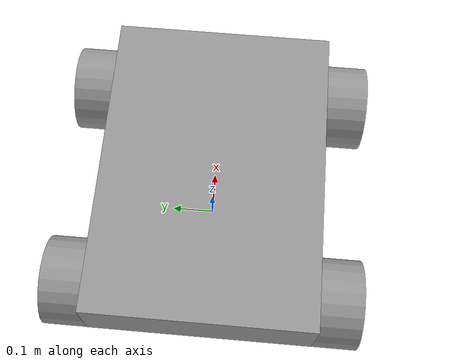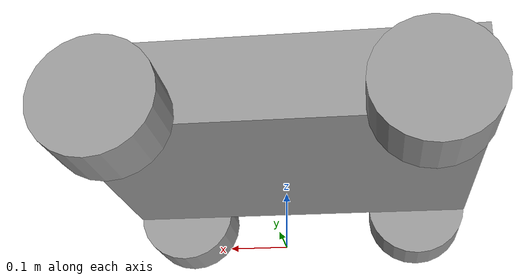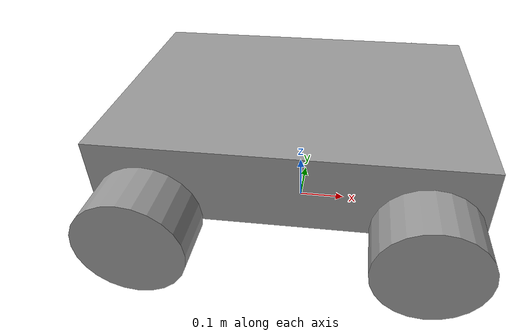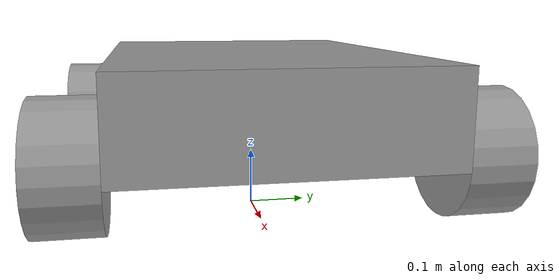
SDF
<?xml version='1.0'?>
<sdf version='1.6'>
  <model name='4wheelrobot1'>
    <link name='Chassis'>
      <pose frame=''>0 0 0.0128 0 -0 0</pose>
      <inertial>
        <mass>1</mass>
        <inertia>
          <ixx>0.166667</ixx>
          <ixy>0</ixy>
          <ixz>0</ixz>
          <iyy>0.166667</iyy>
          <iyz>0</iyz>
          <izz>0.166667</izz>
        </inertia>
        <pose frame=''>0 0 0.2 0 -0 0</pose>
      </inertial>
      <gravity>1</gravity>
      <self_collide>0</self_collide>
      <kinematic>0</kinematic>
      <visual name='Chassis_visual'>
        <pose frame=''>0 0 0.2 0 -0 0</pose>
        <geometry>
          <box>
            <size>0.7 0.5 0.15</size>
          </box>
        </geometry>
        <material>
          <lighting>1</lighting>
          <script>
            <uri>file://media/materials/scripts/gazebo.material</uri>
            <name>Gazebo/Grey</name>
          </script>
          <shader type='pixel'>
            <normal_map>__default__</normal_map>
          </shader>
          <ambient>0.3 0.3 0.3 1</ambient>
          <diffuse>0.7 0.7 0.7 1</diffuse>
          <specular>0.01 0.01 0.01 1</specular>
          <emissive>0 0 0 1</emissive>
        </material>
        <transparency>0</transparency>
        <cast_shadows>1</cast_shadows>
      </visual>
      <collision name='Chassis_collision'>
        <laser_retro>0</laser_retro>
        <max_contacts>10</max_contacts>
        <pose frame=''>0 0 0.2 0 -0 0</pose>
        <geometry>
          <box>
            <size>0.7 0.5 0.15</size>
          </box>
        </geometry>
        <surface>
          <friction>
            <ode>
              <mu>1</mu>
              <mu2>1</mu2>
              <fdir1>0 0 0</fdir1>
              <slip1>0</slip1>
              <slip2>0</slip2>
            </ode>
            <torsional>
              <coefficient>1</coefficient>
              <patch_radius>0</patch_radius>
              <surface_radius>0</surface_radius>
              <use_patch_radius>1</use_patch_radius>
              <ode>
                <slip>0</slip>
              </ode>
            </torsional>
          </friction>
          <bounce>
            <restitution_coefficient>0</restitution_coefficient>
            <threshold>1e+06</threshold>
          </bounce>
          <contact>
            <collide_without_contact>0</collide_without_contact>
            <collide_without_contact_bitmask>1</collide_without_contact_bitmask>
            <collide_bitmask>1</collide_bitmask>
            <ode>
              <soft_cfm>0</soft_cfm>
              <soft_erp>0.2</soft_erp>
              <kp>1e+13</kp>
              <kd>1</kd>
              <max_vel>0.01</max_vel>
              <min_depth>0</min_depth>
            </ode>
            <bullet>
              <split_impulse>1</split_impulse>
              <split_impulse_penetration_threshold>-0.01</split_impulse_penetration_threshold>
              <soft_cfm>0</soft_cfm>
              <soft_erp>0.2</soft_erp>
              <kp>1e+13</kp>
              <kd>1</kd>
            </bullet>
          </contact>
        </surface>
      </collision>
    </link>
    <link name='wheel_1'>
      <pose frame=''>-0.25 0.30001 -0.0032 0 -0 0</pose>
      <inertial>
        <mass>1</mass>
        <inertia>
          <ixx>0.145833</ixx>
          <ixy>0</ixy>
          <ixz>0</ixz>
          <iyy>0.145833</iyy>
          <iyz>0</iyz>
          <izz>0.125</izz>
        </inertia>
        <pose frame=''>0 0 0 0 -0 0</pose>
      </inertial>
      <self_collide>0</self_collide>
      <kinematic>0</kinematic>
      <gravity>1</gravity>
      <visual name='wheel_1_visual'>
        <pose frame=''>0 0 0.15 1.5707 -0 0</pose>
        <geometry>
          <cylinder>
            <radius>0.1</radius>
            <length>0.1</length>
          </cylinder>
        </geometry>
        <material>
          <lighting>1</lighting>
          <script>
            <uri>file://media/materials/scripts/gazebo.material</uri>
            <name>Gazebo/Grey</name>
          </script>
          <shader type='pixel'>
            <normal_map>__default__</normal_map>
          </shader>
          <ambient>0.3 0.3 0.3 1</ambient>
          <diffuse>0.7 0.7 0.7 1</diffuse>
          <specular>0.01 0.01 0.01 1</specular>
          <emissive>0 0 0 1</emissive>
        </material>
        <transparency>0</transparency>
        <cast_shadows>1</cast_shadows>
      </visual>
      <collision name='wheel_1_collision'>
        <laser_retro>0</laser_retro>
        <max_contacts>10</max_contacts>
        <pose frame=''>0 0 0.15 1.5707 -0 0</pose>
        <geometry>
          <cylinder>
            <radius>0.1</radius>
            <length>0.1</length>
          </cylinder>
        </geometry>
        <surface>
          <friction>
            <ode>
              <mu>1</mu>
              <mu2>1</mu2>
              <fdir1>0 0 0</fdir1>
              <slip1>0</slip1>
              <slip2>0</slip2>
            </ode>
            <torsional>
              <coefficient>1</coefficient>
              <patch_radius>0</patch_radius>
              <surface_radius>0</surface_radius>
              <use_patch_radius>1</use_patch_radius>
              <ode>
                <slip>0</slip>
              </ode>
            </torsional>
          </friction>
          <bounce>
            <restitution_coefficient>0</restitution_coefficient>
            <threshold>1e+06</threshold>
          </bounce>
          <contact>
            <collide_without_contact>0</collide_without_contact>
            <collide_without_contact_bitmask>1</collide_without_contact_bitmask>
            <collide_bitmask>1</collide_bitmask>
            <ode>
              <soft_cfm>0</soft_cfm>
              <soft_erp>0.2</soft_erp>
              <kp>1e+13</kp>
              <kd>1</kd>
              <max_vel>0.01</max_vel>
              <min_depth>0</min_depth>
            </ode>
            <bullet>
              <split_impulse>1</split_impulse>
              <split_impulse_penetration_threshold>-0.01</split_impulse_penetration_threshold>
              <soft_cfm>0</soft_cfm>
              <soft_erp>0.2</soft_erp>
              <kp>1e+13</kp>
              <kd>1</kd>
            </bullet>
          </contact>
        </surface>
      </collision>
    </link>
    <link name='wheel_2'>
      <pose frame=''>0.25 -0.30001 -0.0032 0 -0 0</pose>
      <inertial>
        <mass>1</mass>
        <inertia>
          <ixx>0.145833</ixx>
          <ixy>0</ixy>
          <ixz>0</ixz>
          <iyy>0.145833</iyy>
          <iyz>0</iyz>
          <izz>0.125</izz>
        </inertia>
        <pose frame=''>0 0 0 0 -0 0</pose>
      </inertial>
      <self_collide>0</self_collide>
      <kinematic>0</kinematic>
      <visual name='wheel_2_visual'>
        <pose frame=''>0 0 0.15 1.5707 -0 0</pose>
        <geometry>
          <cylinder>
            <radius>0.1</radius>
            <length>0.1</length>
          </cylinder>
        </geometry>
        <material>
          <lighting>1</lighting>
          <script>
            <uri>file://media/materials/scripts/gazebo.material</uri>
            <name>Gazebo/Grey</name>
          </script>
          <shader type='pixel'>
            <normal_map>__default__</normal_map>
          </shader>
          <ambient>0.3 0.3 0.3 1</ambient>
          <diffuse>0.7 0.7 0.7 1</diffuse>
          <specular>0.01 0.01 0.01 1</specular>
          <emissive>0 0 0 1</emissive>
        </material>
        <transparency>0</transparency>
        <cast_shadows>1</cast_shadows>
      </visual>
      <collision name='wheel_2_collision'>
        <laser_retro>0</laser_retro>
        <max_contacts>10</max_contacts>
        <pose frame=''>0 0 0.15 1.5707 -0 0</pose>
        <geometry>
          <cylinder>
            <radius>0.1</radius>
            <length>0.1</length>
          </cylinder>
        </geometry>
        <surface>
          <friction>
            <ode>
              <mu>1</mu>
              <mu2>1</mu2>
              <fdir1>0 0 0</fdir1>
              <slip1>0</slip1>
              <slip2>0</slip2>
            </ode>
            <torsional>
              <coefficient>1</coefficient>
              <patch_radius>0</patch_radius>
              <surface_radius>0</surface_radius>
              <use_patch_radius>1</use_patch_radius>
              <ode>
                <slip>0</slip>
              </ode>
            </torsional>
          </friction>
          <bounce>
            <restitution_coefficient>0</restitution_coefficient>
            <threshold>1e+06</threshold>
          </bounce>
          <contact>
            <collide_without_contact>0</collide_without_contact>
            <collide_without_contact_bitmask>1</collide_without_contact_bitmask>
            <collide_bitmask>1</collide_bitmask>
            <ode>
              <soft_cfm>0</soft_cfm>
              <soft_erp>0.2</soft_erp>
              <kp>1e+13</kp>
              <kd>1</kd>
              <max_vel>0.01</max_vel>
              <min_depth>0</min_depth>
            </ode>
            <bullet>
              <split_impulse>1</split_impulse>
              <split_impulse_penetration_threshold>-0.01</split_impulse_penetration_threshold>
              <soft_cfm>0</soft_cfm>
              <soft_erp>0.2</soft_erp>
              <kp>1e+13</kp>
              <kd>1</kd>
            </bullet>
          </contact>
        </surface>
      </collision>
    </link>
    <link name='wheel_3'>
      <pose frame=''>-0.25 -0.30001 -0.0032 0 -0 0</pose>
      <inertial>
        <mass>1</mass>
        <inertia>
          <ixx>0.145833</ixx>
          <ixy>0</ixy>
          <ixz>0</ixz>
          <iyy>0.145833</iyy>
          <iyz>0</iyz>
          <izz>0.125</izz>
        </inertia>
        <pose frame=''>0 0 0 0 -0 0</pose>
      </inertial>
      <self_collide>0</self_collide>
      <kinematic>0</kinematic>
      <visual name='visual'>
        <pose frame=''>0 0 0.15 1.5707 -0 0</pose>
        <geometry>
          <cylinder>
            <radius>0.1</radius>
            <length>0.1</length>
          </cylinder>
        </geometry>
        <material>
          <lighting>1</lighting>
          <script>
            <uri>file://media/materials/scripts/gazebo.material</uri>
            <name>Gazebo/Grey</name>
          </script>
          <shader type='pixel'>
            <normal_map>__default__</normal_map>
          </shader>
          <ambient>0.3 0.3 0.3 1</ambient>
          <diffuse>0.7 0.7 0.7 1</diffuse>
          <specular>0.01 0.01 0.01 1</specular>
          <emissive>0 0 0 1</emissive>
        </material>
        <transparency>0</transparency>
        <cast_shadows>1</cast_shadows>
      </visual>
      <collision name='collision'>
        <laser_retro>0</laser_retro>
        <max_contacts>10</max_contacts>
        <pose frame=''>0 0 0.15 1.5707 -0 0</pose>
        <geometry>
          <cylinder>
            <radius>0.1</radius>
            <length>0.1</length>
          </cylinder>
        </geometry>
        <surface>
          <friction>
            <ode>
              <mu>1</mu>
              <mu2>1</mu2>
              <fdir1>0 0 0</fdir1>
              <slip1>0</slip1>
              <slip2>0</slip2>
            </ode>
            <torsional>
              <coefficient>1</coefficient>
              <patch_radius>0</patch_radius>
              <surface_radius>0</surface_radius>
              <use_patch_radius>1</use_patch_radius>
              <ode>
                <slip>0</slip>
              </ode>
            </torsional>
          </friction>
          <bounce>
            <restitution_coefficient>0</restitution_coefficient>
            <threshold>1e+06</threshold>
          </bounce>
          <contact>
            <collide_without_contact>0</collide_without_contact>
            <collide_without_contact_bitmask>1</collide_without_contact_bitmask>
            <collide_bitmask>1</collide_bitmask>
            <ode>
              <soft_cfm>0</soft_cfm>
              <soft_erp>0.2</soft_erp>
              <kp>1e+13</kp>
              <kd>1</kd>
              <max_vel>0.01</max_vel>
              <min_depth>0</min_depth>
            </ode>
            <bullet>
              <split_impulse>1</split_impulse>
              <split_impulse_penetration_threshold>-0.01</split_impulse_penetration_threshold>
              <soft_cfm>0</soft_cfm>
              <soft_erp>0.2</soft_erp>
              <kp>1e+13</kp>
              <kd>1</kd>
            </bullet>
          </contact>
        </surface>
      </collision>
    </link>
    <link name='wheel_4'>
      <pose frame=''>0.25 0.30001 -0.0032 0 -0 0</pose>
      <inertial>
        <mass>1</mass>
        <inertia>
          <ixx>0.145833</ixx>
          <ixy>0</ixy>
          <ixz>0</ixz>
          <iyy>0.145833</iyy>
          <iyz>0</iyz>
          <izz>0.125</izz>
        </inertia>
        <pose frame=''>0 0 0 0 -0 0</pose>
      </inertial>
      <self_collide>0</self_collide>
      <kinematic>0</kinematic>
      <visual name='visual'>
        <pose frame=''>0 0 0.15 1.5707 -0 0</pose>
        <geometry>
          <cylinder>
            <radius>0.1</radius>
            <length>0.1</length>
          </cylinder>
        </geometry>
        <material>
          <lighting>1</lighting>
          <script>
            <uri>file://media/materials/scripts/gazebo.material</uri>
            <name>Gazebo/Grey</name>
          </script>
          <shader type='pixel'>
            <normal_map>__default__</normal_map>
          </shader>
          <ambient>0.3 0.3 0.3 1</ambient>
          <diffuse>0.7 0.7 0.7 1</diffuse>
          <specular>0.01 0.01 0.01 1</specular>
          <emissive>0 0 0 1</emissive>
        </material>
        <transparency>0</transparency>
        <cast_shadows>1</cast_shadows>
      </visual>
      <collision name='collision'>
        <laser_retro>0</laser_retro>
        <max_contacts>10</max_contacts>
        <pose frame=''>0 0 0.15 1.5707 -0 0</pose>
        <geometry>
          <cylinder>
            <radius>0.1</radius>
            <length>0.1</length>
          </cylinder>
        </geometry>
        <surface>
          <friction>
            <ode>
              <mu>1</mu>
              <mu2>1</mu2>
              <fdir1>0 0 0</fdir1>
              <slip1>0</slip1>
              <slip2>0</slip2>
            </ode>
            <torsional>
              <coefficient>1</coefficient>
              <patch_radius>0</patch_radius>
              <surface_radius>0</surface_radius>
              <use_patch_radius>1</use_patch_radius>
              <ode>
                <slip>0</slip>
              </ode>
            </torsional>
          </friction>
          <bounce>
            <restitution_coefficient>0</restitution_coefficient>
            <threshold>1e+06</threshold>
          </bounce>
          <contact>
            <collide_without_contact>0</collide_without_contact>
            <collide_without_contact_bitmask>1</collide_without_contact_bitmask>
            <collide_bitmask>1</collide_bitmask>
            <ode>
              <soft_cfm>0</soft_cfm>
              <soft_erp>0.2</soft_erp>
              <kp>1e+13</kp>
              <kd>1</kd>
              <max_vel>0.01</max_vel>
              <min_depth>0</min_depth>
            </ode>
            <bullet>
              <split_impulse>1</split_impulse>
              <split_impulse_penetration_threshold>-0.01</split_impulse_penetration_threshold>
              <soft_cfm>0</soft_cfm>
              <soft_erp>0.2</soft_erp>
              <kp>1e+13</kp>
              <kd>1</kd>
            </bullet>
          </contact>
        </surface>
      </collision>
    </link>
    <joint name='Left_rear_joint' type='revolute'>
      <parent>Chassis</parent>
      <child>wheel_1</child>
      <pose frame=''>0 0 0 0 -0 0</pose>
      <axis>
        <xyz>0 1 0</xyz>
        <use_parent_model_frame>0</use_parent_model_frame>
        <limit>
          <lower>-1.79769e+308</lower>
          <upper>1.79769e+308</upper>
          <effort>-1</effort>
          <velocity>-1</velocity>
        </limit>
        <dynamics>
          <spring_reference>0</spring_reference>
          <spring_stiffness>0</spring_stiffness>
          <damping>0</damping>
          <friction>0</friction>
        </dynamics>
      </axis>
      <physics>
        <ode>
          <limit>
            <cfm>0</cfm>
            <erp>0.2</erp>
          </limit>
          <suspension>
            <cfm>0</cfm>
            <erp>0.2</erp>
          </suspension>
        </ode>
      </physics>
    </joint>
    <joint name='Front_right_joint' type='revolute'>
      <parent>Chassis</parent>
      <child>wheel_2</child>
      <pose frame=''>0 0 0 0 -0 0</pose>
      <axis>
        <xyz>0 -1 0</xyz>
        <use_parent_model_frame>0</use_parent_model_frame>
        <limit>
          <lower>-1.79769e+308</lower>
          <upper>1.79769e+308</upper>
          <effort>-1</effort>
          <velocity>-1</velocity>
        </limit>
        <dynamics>
          <spring_reference>0</spring_reference>
          <spring_stiffness>0</spring_stiffness>
          <damping>0</damping>
          <friction>0</friction>
        </dynamics>
      </axis>
      <physics>
        <ode>
          <limit>
            <cfm>0</cfm>
            <erp>0.2</erp>
          </limit>
          <suspension>
            <cfm>0</cfm>
            <erp>0.2</erp>
          </suspension>
        </ode>
      </physics>
    </joint>
    <joint name='Rear_right_joint' type='revolute'>
      <parent>Chassis</parent>
      <child>wheel_3</child>
      <pose frame=''>0 0 0 0 -0 0</pose>
      <axis>
        <xyz>0 -1 0</xyz>
        <use_parent_model_frame>0</use_parent_model_frame>
        <limit>
          <lower>-1.79769e+308</lower>
          <upper>1.79769e+308</upper>
          <effort>-1</effort>
          <velocity>-1</velocity>
        </limit>
        <dynamics>
          <spring_reference>0</spring_reference>
          <spring_stiffness>0</spring_stiffness>
          <damping>0</damping>
          <friction>0</friction>
        </dynamics>
      </axis>
      <physics>
        <ode>
          <limit>
            <cfm>0</cfm>
            <erp>0.2</erp>
          </limit>
          <suspension>
            <cfm>0</cfm>
            <erp>0.2</erp>
          </suspension>
        </ode>
      </physics>
    </joint>
    <joint name='Left_front_joint' type='revolute'>
      <parent>Chassis</parent>
      <child>wheel_4</child>
      <pose frame=''>0 0 0 0 -0 0</pose>
      <axis>
        <xyz>1 0 0</xyz>
        <use_parent_model_frame>0</use_parent_model_frame>
        <limit>
          <lower>-1.79769e+308</lower>
          <upper>1.79769e+308</upper>
          <effort>-1</effort>
          <velocity>-1</velocity>
        </limit>
        <dynamics>
          <spring_reference>0</spring_reference>
          <spring_stiffness>0</spring_stiffness>
          <damping>0</damping>
          <friction>0</friction>
        </dynamics>
      </axis>
      <physics>
        <ode>
          <limit>
            <cfm>0</cfm>
            <erp>0.2</erp>
          </limit>
          <suspension>
            <cfm>0</cfm>
            <erp>0.2</erp>
          </suspension>
        </ode>
      </physics>
    </joint>
    <static>0</static>
    <allow_auto_disable>1</allow_auto_disable>
  </model>
</sdf>
